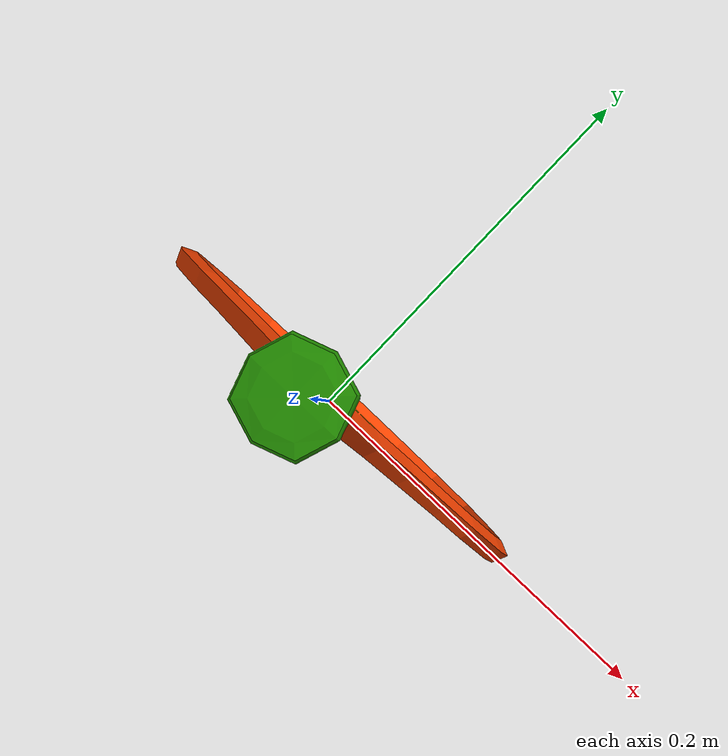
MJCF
<mujoco model="Tennis_Racquet_5">
  <compiler angle="radian"/>

  <default>
    <default class="/">
      <default class="__VISUAL_MJT__">
        <geom contype="0" conaffinity="0"/>
      </default>
      <default class="__STRUCTURAL_MJT__">
        <geom contype="8" conaffinity="15" group="4" friction="0.9 0.9 0.001" solref="0.025" solimp="0.998 0.998"/>
      </default>
      <default class="__DYNAMIC_MJT__">
        <geom conaffinity="15" group="4" friction="0.9 0.9 0.001" solref="0.025" solimp="0.998 0.998"/>
      </default>
    </default>
  </default>

  <asset>
    <material name="material_GreenPlastic" class="/" rgba="0.129564 0.536765 0 1"/>
    <material name="material_OrangePlastic" class="/" rgba="1 0.268966 0 1"/>
    <material name="material_YellowPlastic2" class="/" rgba="1 0.889655 0 1"/>
    <mesh name="Tennis_Racquet_5_Cube.1755_0" class="/" file="Tennis_Racquet_5_Cube.1755/Tennis_Racquet_5_Cube.1755_0.obj" scale="11.9392 11.9392 11.9392"/>
    <mesh name="Tennis_Racquet_5_Cube.1755_1" class="/" file="Tennis_Racquet_5_Cube.1755/Tennis_Racquet_5_Cube.1755_1.obj" scale="11.9392 11.9392 11.9392"/>
    <mesh name="Tennis_Racquet_5_Cube.1755_2" class="/" file="Tennis_Racquet_5_Cube.1755/Tennis_Racquet_5_Cube.1755_2.obj" scale="11.9392 11.9392 11.9392"/>
    <mesh name="Tennis_Racquet_5_Cube.1755_0_collision_14" file="Tennis_Racquet_5_Cube.1755/Tennis_Racquet_5_Cube.1755_0/Tennis_Racquet_5_Cube.1755_0_collision_14.obj" scale="11.9392 11.9392 11.9392"/>
    <mesh name="Tennis_Racquet_5_Cube.1755_0_collision_2" file="Tennis_Racquet_5_Cube.1755/Tennis_Racquet_5_Cube.1755_0/Tennis_Racquet_5_Cube.1755_0_collision_2.obj" scale="11.9392 11.9392 11.9392"/>
    <mesh name="Tennis_Racquet_5_Cube.1755_0_collision_7" file="Tennis_Racquet_5_Cube.1755/Tennis_Racquet_5_Cube.1755_0/Tennis_Racquet_5_Cube.1755_0_collision_7.obj" scale="11.9392 11.9392 11.9392"/>
    <mesh name="Tennis_Racquet_5_Cube.1755_0_collision_6" file="Tennis_Racquet_5_Cube.1755/Tennis_Racquet_5_Cube.1755_0/Tennis_Racquet_5_Cube.1755_0_collision_6.obj" scale="11.9392 11.9392 11.9392"/>
    <mesh name="Tennis_Racquet_5_Cube.1755_0_collision_0" file="Tennis_Racquet_5_Cube.1755/Tennis_Racquet_5_Cube.1755_0/Tennis_Racquet_5_Cube.1755_0_collision_0.obj" scale="11.9392 11.9392 11.9392"/>
    <mesh name="Tennis_Racquet_5_Cube.1755_0_collision_9" file="Tennis_Racquet_5_Cube.1755/Tennis_Racquet_5_Cube.1755_0/Tennis_Racquet_5_Cube.1755_0_collision_9.obj" scale="11.9392 11.9392 11.9392"/>
    <mesh name="Tennis_Racquet_5_Cube.1755_0_collision_15" file="Tennis_Racquet_5_Cube.1755/Tennis_Racquet_5_Cube.1755_0/Tennis_Racquet_5_Cube.1755_0_collision_15.obj" scale="11.9392 11.9392 11.9392"/>
    <mesh name="Tennis_Racquet_5_Cube.1755_0_collision_8" file="Tennis_Racquet_5_Cube.1755/Tennis_Racquet_5_Cube.1755_0/Tennis_Racquet_5_Cube.1755_0_collision_8.obj" scale="11.9392 11.9392 11.9392"/>
    <mesh name="Tennis_Racquet_5_Cube.1755_0_collision_13" file="Tennis_Racquet_5_Cube.1755/Tennis_Racquet_5_Cube.1755_0/Tennis_Racquet_5_Cube.1755_0_collision_13.obj" scale="11.9392 11.9392 11.9392"/>
    <mesh name="Tennis_Racquet_5_Cube.1755_0_collision_11" file="Tennis_Racquet_5_Cube.1755/Tennis_Racquet_5_Cube.1755_0/Tennis_Racquet_5_Cube.1755_0_collision_11.obj" scale="11.9392 11.9392 11.9392"/>
    <mesh name="Tennis_Racquet_5_Cube.1755_0_collision_16" file="Tennis_Racquet_5_Cube.1755/Tennis_Racquet_5_Cube.1755_0/Tennis_Racquet_5_Cube.1755_0_collision_16.obj" scale="11.9392 11.9392 11.9392"/>
    <mesh name="Tennis_Racquet_5_Cube.1755_0_collision_10" file="Tennis_Racquet_5_Cube.1755/Tennis_Racquet_5_Cube.1755_0/Tennis_Racquet_5_Cube.1755_0_collision_10.obj" scale="11.9392 11.9392 11.9392"/>
    <mesh name="Tennis_Racquet_5_Cube.1755_0_collision_5" file="Tennis_Racquet_5_Cube.1755/Tennis_Racquet_5_Cube.1755_0/Tennis_Racquet_5_Cube.1755_0_collision_5.obj" scale="11.9392 11.9392 11.9392"/>
    <mesh name="Tennis_Racquet_5_Cube.1755_0_collision_1" file="Tennis_Racquet_5_Cube.1755/Tennis_Racquet_5_Cube.1755_0/Tennis_Racquet_5_Cube.1755_0_collision_1.obj" scale="11.9392 11.9392 11.9392"/>
    <mesh name="Tennis_Racquet_5_Cube.1755_0_collision_3" file="Tennis_Racquet_5_Cube.1755/Tennis_Racquet_5_Cube.1755_0/Tennis_Racquet_5_Cube.1755_0_collision_3.obj" scale="11.9392 11.9392 11.9392"/>
    <mesh name="Tennis_Racquet_5_Cube.1755_0_collision_12" file="Tennis_Racquet_5_Cube.1755/Tennis_Racquet_5_Cube.1755_0/Tennis_Racquet_5_Cube.1755_0_collision_12.obj" scale="11.9392 11.9392 11.9392"/>
    <mesh name="Tennis_Racquet_5_Cube.1755_0_collision_4" file="Tennis_Racquet_5_Cube.1755/Tennis_Racquet_5_Cube.1755_0/Tennis_Racquet_5_Cube.1755_0_collision_4.obj" scale="11.9392 11.9392 11.9392"/>
    <mesh name="Tennis_Racquet_5_Cube.1755_1_collision_1" file="Tennis_Racquet_5_Cube.1755/Tennis_Racquet_5_Cube.1755_1/Tennis_Racquet_5_Cube.1755_1_collision_1.obj" scale="11.9392 11.9392 11.9392"/>
    <mesh name="Tennis_Racquet_5_Cube.1755_1_collision_6" file="Tennis_Racquet_5_Cube.1755/Tennis_Racquet_5_Cube.1755_1/Tennis_Racquet_5_Cube.1755_1_collision_6.obj" scale="11.9392 11.9392 11.9392"/>
    <mesh name="Tennis_Racquet_5_Cube.1755_1_collision_9" file="Tennis_Racquet_5_Cube.1755/Tennis_Racquet_5_Cube.1755_1/Tennis_Racquet_5_Cube.1755_1_collision_9.obj" scale="11.9392 11.9392 11.9392"/>
    <mesh name="Tennis_Racquet_5_Cube.1755_1_collision_7" file="Tennis_Racquet_5_Cube.1755/Tennis_Racquet_5_Cube.1755_1/Tennis_Racquet_5_Cube.1755_1_collision_7.obj" scale="11.9392 11.9392 11.9392"/>
    <mesh name="Tennis_Racquet_5_Cube.1755_1_collision_12" file="Tennis_Racquet_5_Cube.1755/Tennis_Racquet_5_Cube.1755_1/Tennis_Racquet_5_Cube.1755_1_collision_12.obj" scale="11.9392 11.9392 11.9392"/>
    <mesh name="Tennis_Racquet_5_Cube.1755_1_collision_0" file="Tennis_Racquet_5_Cube.1755/Tennis_Racquet_5_Cube.1755_1/Tennis_Racquet_5_Cube.1755_1_collision_0.obj" scale="11.9392 11.9392 11.9392"/>
    <mesh name="Tennis_Racquet_5_Cube.1755_1_collision_13" file="Tennis_Racquet_5_Cube.1755/Tennis_Racquet_5_Cube.1755_1/Tennis_Racquet_5_Cube.1755_1_collision_13.obj" scale="11.9392 11.9392 11.9392"/>
    <mesh name="Tennis_Racquet_5_Cube.1755_1_collision_8" file="Tennis_Racquet_5_Cube.1755/Tennis_Racquet_5_Cube.1755_1/Tennis_Racquet_5_Cube.1755_1_collision_8.obj" scale="11.9392 11.9392 11.9392"/>
    <mesh name="Tennis_Racquet_5_Cube.1755_1_collision_10" file="Tennis_Racquet_5_Cube.1755/Tennis_Racquet_5_Cube.1755_1/Tennis_Racquet_5_Cube.1755_1_collision_10.obj" scale="11.9392 11.9392 11.9392"/>
    <mesh name="Tennis_Racquet_5_Cube.1755_1_collision_4" file="Tennis_Racquet_5_Cube.1755/Tennis_Racquet_5_Cube.1755_1/Tennis_Racquet_5_Cube.1755_1_collision_4.obj" scale="11.9392 11.9392 11.9392"/>
    <mesh name="Tennis_Racquet_5_Cube.1755_1_collision_3" file="Tennis_Racquet_5_Cube.1755/Tennis_Racquet_5_Cube.1755_1/Tennis_Racquet_5_Cube.1755_1_collision_3.obj" scale="11.9392 11.9392 11.9392"/>
    <mesh name="Tennis_Racquet_5_Cube.1755_1_collision_2" file="Tennis_Racquet_5_Cube.1755/Tennis_Racquet_5_Cube.1755_1/Tennis_Racquet_5_Cube.1755_1_collision_2.obj" scale="11.9392 11.9392 11.9392"/>
    <mesh name="Tennis_Racquet_5_Cube.1755_1_collision_5" file="Tennis_Racquet_5_Cube.1755/Tennis_Racquet_5_Cube.1755_1/Tennis_Racquet_5_Cube.1755_1_collision_5.obj" scale="11.9392 11.9392 11.9392"/>
    <mesh name="Tennis_Racquet_5_Cube.1755_1_collision_11" file="Tennis_Racquet_5_Cube.1755/Tennis_Racquet_5_Cube.1755_1/Tennis_Racquet_5_Cube.1755_1_collision_11.obj" scale="11.9392 11.9392 11.9392"/>
    <mesh name="Tennis_Racquet_5_Cube.1755_2_collision_3" file="Tennis_Racquet_5_Cube.1755/Tennis_Racquet_5_Cube.1755_2/Tennis_Racquet_5_Cube.1755_2_collision_3.obj" scale="11.9392 11.9392 11.9392"/>
    <mesh name="Tennis_Racquet_5_Cube.1755_2_collision_2" file="Tennis_Racquet_5_Cube.1755/Tennis_Racquet_5_Cube.1755_2/Tennis_Racquet_5_Cube.1755_2_collision_2.obj" scale="11.9392 11.9392 11.9392"/>
    <mesh name="Tennis_Racquet_5_Cube.1755_2_collision_1" file="Tennis_Racquet_5_Cube.1755/Tennis_Racquet_5_Cube.1755_2/Tennis_Racquet_5_Cube.1755_2_collision_1.obj" scale="11.9392 11.9392 11.9392"/>
    <mesh name="Tennis_Racquet_5_Cube.1755_2_collision_0" file="Tennis_Racquet_5_Cube.1755/Tennis_Racquet_5_Cube.1755_2/Tennis_Racquet_5_Cube.1755_2_collision_0.obj" scale="11.9392 11.9392 11.9392"/>
  </asset>

  <worldbody>
    <body name="Tennis_Racquet_5">
      <joint name="Tennis_Racquet_5_free" class="/" type="free" limited="false" actuatorfrclimited="false" damping="0.1"/>
      <body name="Tennis_Racquet_5_Cube.1755" pos="0.00042 2.98023e-08 0.27461" quat="0.707107 -0.707107 0 0">
        <geom name="Tennis_Racquet_5_Cube.1755_0" class="__VISUAL_MJT__" type="mesh" material="material_GreenPlastic" mesh="Tennis_Racquet_5_Cube.1755_0"/>
        <geom name="Tennis_Racquet_5_Cube.1755_1" class="__VISUAL_MJT__" type="mesh" material="material_OrangePlastic" mesh="Tennis_Racquet_5_Cube.1755_1"/>
        <geom name="Tennis_Racquet_5_Cube.1755_2" class="__VISUAL_MJT__" type="mesh" material="material_YellowPlastic2" mesh="Tennis_Racquet_5_Cube.1755_2"/>
        <geom name="Tennis_Racquet_5_Cube.1755_Tennis_Racquet_5_Cube.1755_0_MeshCollider_0" class="__DYNAMIC_MJT__" type="mesh" density="150" rgba="0.276446 0.694725 0.6367 1" mesh="Tennis_Racquet_5_Cube.1755_0_collision_14"/>
        <geom name="Tennis_Racquet_5_Cube.1755_Tennis_Racquet_5_Cube.1755_0_MeshCollider_1" class="__DYNAMIC_MJT__" type="mesh" density="150" rgba="0.693894 0.0777355 0.469306 1" mesh="Tennis_Racquet_5_Cube.1755_0_collision_2"/>
        <geom name="Tennis_Racquet_5_Cube.1755_Tennis_Racquet_5_Cube.1755_0_MeshCollider_2" class="__DYNAMIC_MJT__" type="mesh" density="150" rgba="0.524743 0.81274 0.241245 1" mesh="Tennis_Racquet_5_Cube.1755_0_collision_7"/>
        <geom name="Tennis_Racquet_5_Cube.1755_Tennis_Racquet_5_Cube.1755_0_MeshCollider_3" class="__DYNAMIC_MJT__" type="mesh" density="150" rgba="0.944137 0.367381 0.537326 1" mesh="Tennis_Racquet_5_Cube.1755_0_collision_6"/>
        <geom name="Tennis_Racquet_5_Cube.1755_Tennis_Racquet_5_Cube.1755_0_MeshCollider_4" class="__DYNAMIC_MJT__" type="mesh" density="150" rgba="0.831267 0.390717 0.973958 1" mesh="Tennis_Racquet_5_Cube.1755_0_collision_0"/>
        <geom name="Tennis_Racquet_5_Cube.1755_Tennis_Racquet_5_Cube.1755_0_MeshCollider_5" class="__DYNAMIC_MJT__" type="mesh" density="150" rgba="0.556919 0.161501 0.492906 1" mesh="Tennis_Racquet_5_Cube.1755_0_collision_9"/>
        <geom name="Tennis_Racquet_5_Cube.1755_Tennis_Racquet_5_Cube.1755_0_MeshCollider_6" class="__DYNAMIC_MJT__" type="mesh" density="150" rgba="0.0922677 0.871759 0.968813 1" mesh="Tennis_Racquet_5_Cube.1755_0_collision_15"/>
        <geom name="Tennis_Racquet_5_Cube.1755_Tennis_Racquet_5_Cube.1755_0_MeshCollider_7" class="__DYNAMIC_MJT__" type="mesh" density="150" rgba="0.471109 0.940329 0.461171 1" mesh="Tennis_Racquet_5_Cube.1755_0_collision_8"/>
        <geom name="Tennis_Racquet_5_Cube.1755_Tennis_Racquet_5_Cube.1755_0_MeshCollider_8" class="__DYNAMIC_MJT__" type="mesh" density="150" rgba="0.0214727 0.496237 0.611608 1" mesh="Tennis_Racquet_5_Cube.1755_0_collision_13"/>
        <geom name="Tennis_Racquet_5_Cube.1755_Tennis_Racquet_5_Cube.1755_0_MeshCollider_9" class="__DYNAMIC_MJT__" type="mesh" density="150" rgba="0.495329 0.0623562 0.174757 1" mesh="Tennis_Racquet_5_Cube.1755_0_collision_11"/>
        <geom name="Tennis_Racquet_5_Cube.1755_Tennis_Racquet_5_Cube.1755_0_MeshCollider_10" class="__DYNAMIC_MJT__" type="mesh" density="150" rgba="0.886314 0.0933564 0.49646 1" mesh="Tennis_Racquet_5_Cube.1755_0_collision_16"/>
        <geom name="Tennis_Racquet_5_Cube.1755_Tennis_Racquet_5_Cube.1755_0_MeshCollider_11" class="__DYNAMIC_MJT__" type="mesh" density="150" rgba="0.860949 0.805511 0.286547 1" mesh="Tennis_Racquet_5_Cube.1755_0_collision_10"/>
        <geom name="Tennis_Racquet_5_Cube.1755_Tennis_Racquet_5_Cube.1755_0_MeshCollider_12" class="__DYNAMIC_MJT__" type="mesh" density="150" rgba="0.521739 0.527075 0.58863 1" mesh="Tennis_Racquet_5_Cube.1755_0_collision_5"/>
        <geom name="Tennis_Racquet_5_Cube.1755_Tennis_Racquet_5_Cube.1755_0_MeshCollider_13" class="__DYNAMIC_MJT__" type="mesh" density="150" rgba="0.978333 0.333111 0.416557 1" mesh="Tennis_Racquet_5_Cube.1755_0_collision_1"/>
        <geom name="Tennis_Racquet_5_Cube.1755_Tennis_Racquet_5_Cube.1755_0_MeshCollider_14" class="__DYNAMIC_MJT__" type="mesh" density="150" rgba="0.0709267 0.482238 0.917812 1" mesh="Tennis_Racquet_5_Cube.1755_0_collision_3"/>
        <geom name="Tennis_Racquet_5_Cube.1755_Tennis_Racquet_5_Cube.1755_0_MeshCollider_15" class="__DYNAMIC_MJT__" type="mesh" density="150" rgba="0.233367 0.300847 0.824631 1" mesh="Tennis_Racquet_5_Cube.1755_0_collision_12"/>
        <geom name="Tennis_Racquet_5_Cube.1755_Tennis_Racquet_5_Cube.1755_0_MeshCollider_16" class="__DYNAMIC_MJT__" type="mesh" density="150" rgba="0.733382 0.913741 0.168121 1" mesh="Tennis_Racquet_5_Cube.1755_0_collision_4"/>
        <geom name="Tennis_Racquet_5_Cube.1755_Tennis_Racquet_5_Cube.1755_1_MeshCollider_0" class="__DYNAMIC_MJT__" type="mesh" density="150" rgba="0.870863 0.652111 0.417055 1" mesh="Tennis_Racquet_5_Cube.1755_1_collision_1"/>
        <geom name="Tennis_Racquet_5_Cube.1755_Tennis_Racquet_5_Cube.1755_1_MeshCollider_1" class="__DYNAMIC_MJT__" type="mesh" density="150" rgba="0.380992 0.630868 0.726802 1" mesh="Tennis_Racquet_5_Cube.1755_1_collision_6"/>
        <geom name="Tennis_Racquet_5_Cube.1755_Tennis_Racquet_5_Cube.1755_1_MeshCollider_2" class="__DYNAMIC_MJT__" type="mesh" density="150" rgba="0.661049 0.288411 0.789166 1" mesh="Tennis_Racquet_5_Cube.1755_1_collision_9"/>
        <geom name="Tennis_Racquet_5_Cube.1755_Tennis_Racquet_5_Cube.1755_1_MeshCollider_3" class="__DYNAMIC_MJT__" type="mesh" density="150" rgba="0.87224 0.264536 0.539144 1" mesh="Tennis_Racquet_5_Cube.1755_1_collision_7"/>
        <geom name="Tennis_Racquet_5_Cube.1755_Tennis_Racquet_5_Cube.1755_1_MeshCollider_4" class="__DYNAMIC_MJT__" type="mesh" density="150" rgba="0.958682 0.242561 0.356739 1" mesh="Tennis_Racquet_5_Cube.1755_1_collision_12"/>
        <geom name="Tennis_Racquet_5_Cube.1755_Tennis_Racquet_5_Cube.1755_1_MeshCollider_5" class="__DYNAMIC_MJT__" type="mesh" density="150" rgba="0.647806 0.0376456 0.0457248 1" mesh="Tennis_Racquet_5_Cube.1755_1_collision_0"/>
        <geom name="Tennis_Racquet_5_Cube.1755_Tennis_Racquet_5_Cube.1755_1_MeshCollider_6" class="__DYNAMIC_MJT__" type="mesh" density="150" rgba="0.347545 0.881556 0.354096 1" mesh="Tennis_Racquet_5_Cube.1755_1_collision_13"/>
        <geom name="Tennis_Racquet_5_Cube.1755_Tennis_Racquet_5_Cube.1755_1_MeshCollider_7" class="__DYNAMIC_MJT__" type="mesh" density="150" rgba="0.47983 0.426543 0.484973 1" mesh="Tennis_Racquet_5_Cube.1755_1_collision_8"/>
        <geom name="Tennis_Racquet_5_Cube.1755_Tennis_Racquet_5_Cube.1755_1_MeshCollider_8" class="__DYNAMIC_MJT__" type="mesh" density="150" rgba="0.351703 0.61968 0.238493 1" mesh="Tennis_Racquet_5_Cube.1755_1_collision_10"/>
        <geom name="Tennis_Racquet_5_Cube.1755_Tennis_Racquet_5_Cube.1755_1_MeshCollider_9" class="__DYNAMIC_MJT__" type="mesh" density="150" rgba="0.996538 0.0153916 0.387594 1" mesh="Tennis_Racquet_5_Cube.1755_1_collision_4"/>
        <geom name="Tennis_Racquet_5_Cube.1755_Tennis_Racquet_5_Cube.1755_1_MeshCollider_10" class="__DYNAMIC_MJT__" type="mesh" density="150" rgba="0.966036 0.470402 0.350255 1" mesh="Tennis_Racquet_5_Cube.1755_1_collision_3"/>
        <geom name="Tennis_Racquet_5_Cube.1755_Tennis_Racquet_5_Cube.1755_1_MeshCollider_11" class="__DYNAMIC_MJT__" type="mesh" density="150" rgba="0.763944 0.381989 0.981581 1" mesh="Tennis_Racquet_5_Cube.1755_1_collision_2"/>
        <geom name="Tennis_Racquet_5_Cube.1755_Tennis_Racquet_5_Cube.1755_1_MeshCollider_12" class="__DYNAMIC_MJT__" type="mesh" density="150" rgba="0.817019 0.112628 0.433857 1" mesh="Tennis_Racquet_5_Cube.1755_1_collision_5"/>
        <geom name="Tennis_Racquet_5_Cube.1755_Tennis_Racquet_5_Cube.1755_1_MeshCollider_13" class="__DYNAMIC_MJT__" type="mesh" density="150" rgba="0.474923 0.544691 0.259281 1" mesh="Tennis_Racquet_5_Cube.1755_1_collision_11"/>
        <geom name="Tennis_Racquet_5_Cube.1755_Tennis_Racquet_5_Cube.1755_2_MeshCollider_0" class="__DYNAMIC_MJT__" type="mesh" density="150" rgba="0.704512 0.387377 0.470685 1" mesh="Tennis_Racquet_5_Cube.1755_2_collision_3"/>
        <geom name="Tennis_Racquet_5_Cube.1755_Tennis_Racquet_5_Cube.1755_2_MeshCollider_1" class="__DYNAMIC_MJT__" type="mesh" density="150" rgba="0.608123 0.277965 0.751146 1" mesh="Tennis_Racquet_5_Cube.1755_2_collision_2"/>
        <geom name="Tennis_Racquet_5_Cube.1755_Tennis_Racquet_5_Cube.1755_2_MeshCollider_2" class="__DYNAMIC_MJT__" type="mesh" density="150" rgba="0.102687 0.124131 0.00982995 1" mesh="Tennis_Racquet_5_Cube.1755_2_collision_1"/>
        <geom name="Tennis_Racquet_5_Cube.1755_Tennis_Racquet_5_Cube.1755_2_MeshCollider_3" class="__DYNAMIC_MJT__" type="mesh" density="150" rgba="0.0140737 0.515001 0.197667 1" mesh="Tennis_Racquet_5_Cube.1755_2_collision_0"/>
      </body>
    </body>
  </worldbody>
</mujoco>
